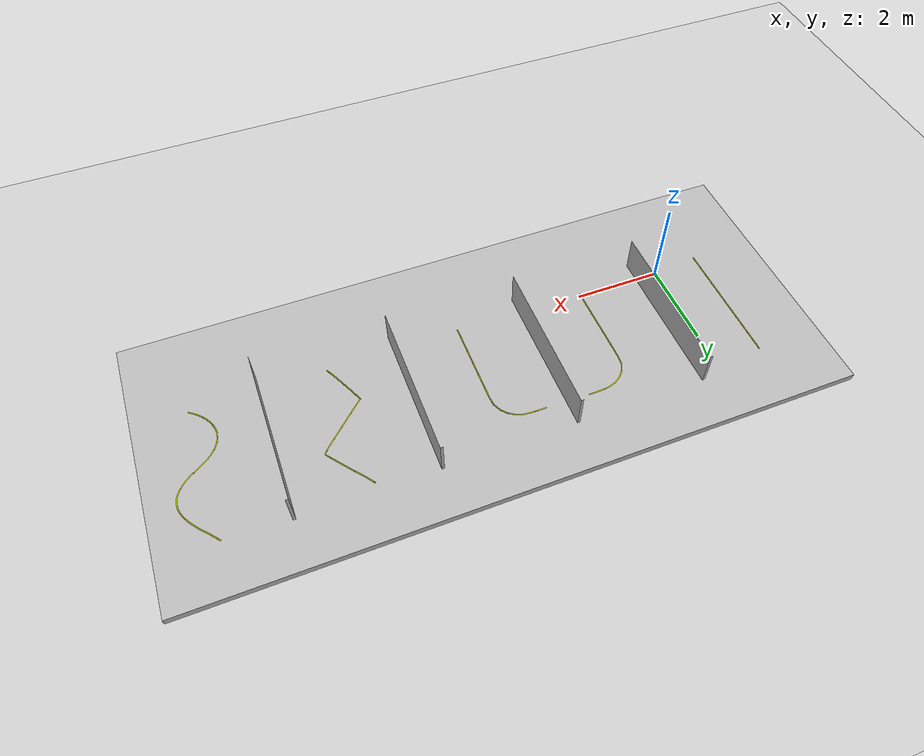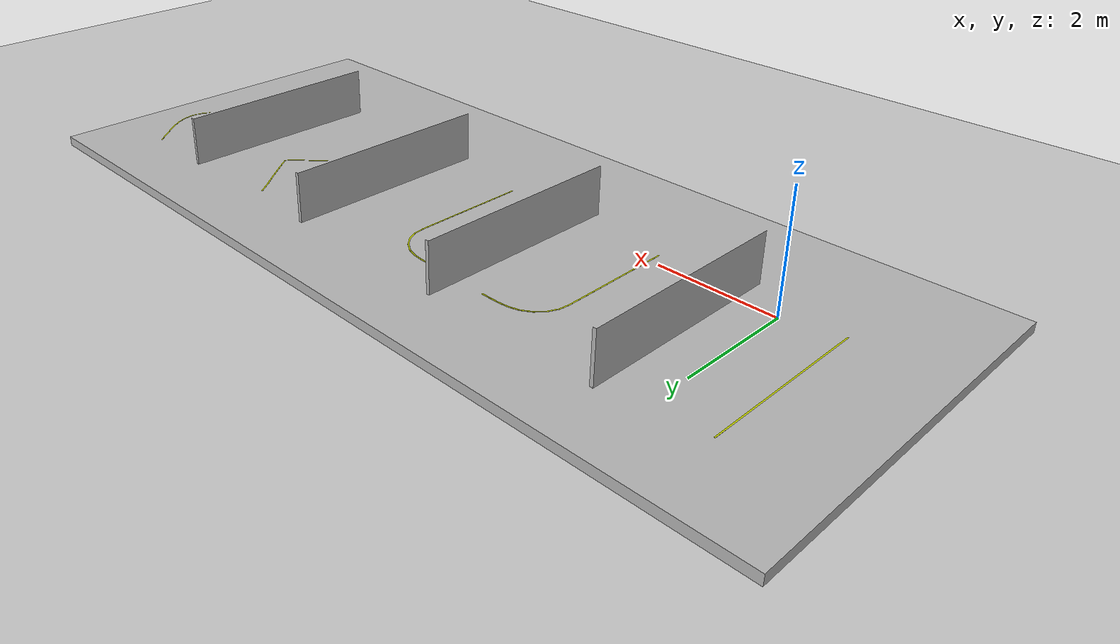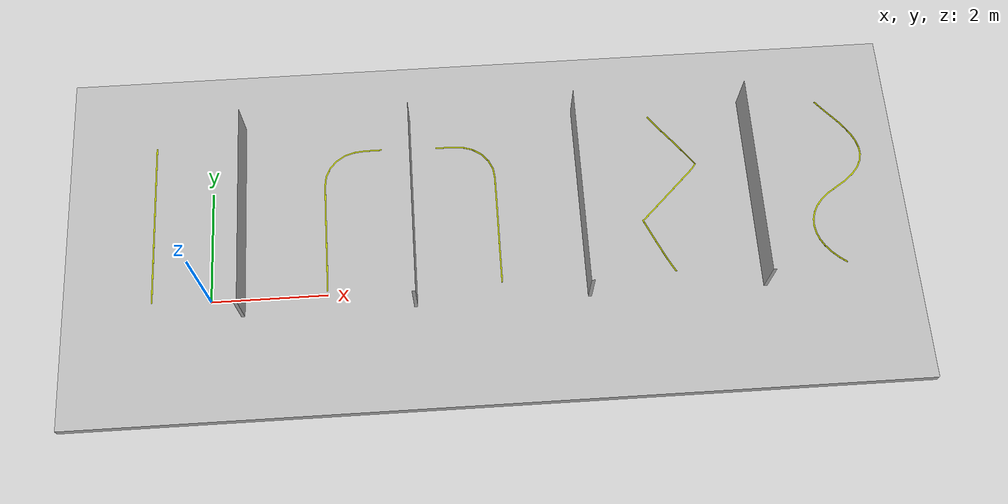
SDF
<?xml version="1.0" ?>
<sdf version="1.4">
	<world name="default">
    		<!-- Simple world  model -->
		<include>
			<uri>model://training</uri>
			<name>training</name>
			<pose>0 0 0 0 0 0</pose>
		</include>

		<include>
			<uri>model://sun</uri>
		</include>

		<!-- A ground plane -->
		<include>
			<uri>model://ground_plane</uri>
		</include>

		<scene>
			<grid>false</grid>
		</scene>
	</world>
</sdf>

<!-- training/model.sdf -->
<sdf version='1.4'>

  <model name='escenario'>
    <pose>0 0 0 0 0 0</pose>
    <static>true</static>
    <link name="training">
      <visual name="training">
        <geometry>
          <mesh><uri>model://training/meshes/training.dae</uri></mesh>
        </geometry>
      </visual>
    </link>
    <link name="plano">
      <visual name="plano">
        <geometry>
          <mesh><uri>model://training/meshes/plano.dae</uri></mesh>
        </geometry>
      </visual>
      <collision name="plano_collision">
        <geometry>
          <mesh><uri>model://training/meshes/plano.dae</uri></mesh>
        </geometry>
      </collision>
    </link>
  </model>
</sdf>
